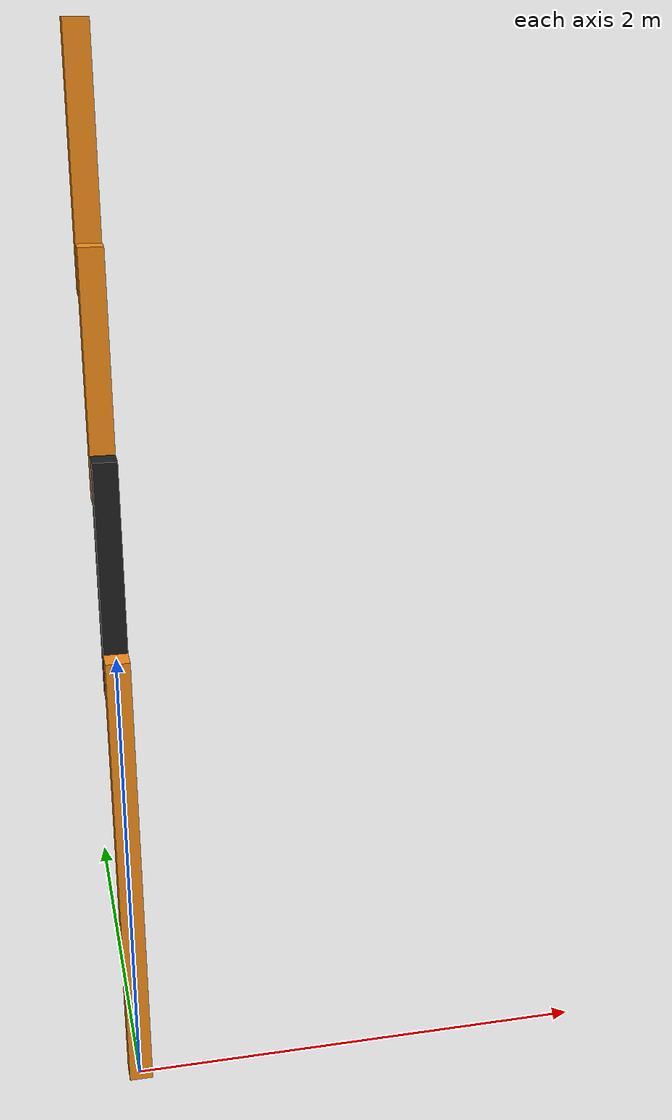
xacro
<?xml version="1.0"?>
<!-- Revolute-Revolute Manipulator -->
<robot name="pa1_robot" xmlns:xacro="http://www.ros.org/wiki/xacro">

  <!-- Constants for robot dimensions -->
  <xacro:property name="PI" value="3.1415926535897931"/>
  <xacro:property name="mass" value="1" /> <!-- arbitrary value for mass -->
  <xacro:property name="width" value="0.1" /> <!-- Square dimensions (widthxwidth) of beams -->
  <xacro:property name="height1" value="2" /> <!-- Link 1 -->
  <xacro:property name="height2" value="1" /> <!-- Link 2 -->
  <xacro:property name="height3" value="1" /> <!-- Link 3 -->
  <xacro:property name="height4" value="1" /> <!-- Link 4 -->

  <!-- Used for fixing robot to Gazebo 'base_link' -->
  <link name="world"/>

  <joint name="fixed" type="fixed">
    <parent link="world"/>
    <child link="link1"/>
  </joint>

  <!-- Base Link -->
  <link name="link1">
    <collision>
      <origin xyz="0 0 ${height1/2}" rpy="0 0 0"/>
      <geometry>
	<box size="${width} ${width} ${height1}"/>
      </geometry>
    </collision>

    <visual>
      <origin xyz="0 0 ${height1/2}" rpy="0 0 0"/>
      <geometry>
	<box size="${width} ${width} ${height1}"/>
      </geometry>
      <material name="orange"/>
    </visual>

    <inertial>
      <origin xyz="0 0 ${height1/2}" rpy="0 0 0"/>
      <mass value="${mass}"/>
      <inertia
	  ixx="${mass / 12.0 * (width*width + height1*height1)}" ixy="0.0" ixz="0.0"
	  iyy="${mass / 12.0 * (height1*height1 + width*width)}" iyz="0.0"
	  izz="${mass / 12.0 * (width*width + width*width)}"/>
    </inertial>
  </link>

  <joint name="joint1" type="continuous">
    <parent link="link1"/>
    <child link="link2"/>
    <origin xyz="0 ${width} ${height1 - 0.1}" rpy="0 0 0"/>
    <axis xyz="0 1 0"/>
    <dynamics damping="0.7"/>
  </joint>

  <!-- Middle Link -->
  <link name="link2">
    <collision>
      <origin xyz="0 0 ${height2/2 - 0.1}" rpy="0 0 0"/>
      <geometry>
	<box size="${width} ${width} ${height2}"/>
      </geometry>
    </collision>

    <visual>
      <origin xyz="0 0 ${height2/2 - 0.1}" rpy="0 0 0"/>
      <geometry>
	<box size="${width} ${width} ${height2}"/>
      </geometry>
      <material name="black"/>
    </visual>

    <inertial>
      <origin xyz="0 0 ${height2/2 - 0.1}" rpy="0 0 0"/>
      <mass value="${mass}"/>
      <inertia
	  ixx="${mass / 12.0 * (width*width + height2*height2)}" ixy="0.0" ixz="0.0"
	  iyy="${mass / 12.0 * (height2*height2 + width*width)}" iyz="0.0"
	  izz="${mass / 12.0 * (width*width + width*width)}"/>
    </inertial>
  </link>

  <joint name="joint2" type="continuous">
    <parent link="link2"/>
    <child link="link3"/>
    <origin xyz="0 ${width} ${height2 - 0.1*2}" rpy="0 0 0"/>
    <axis xyz="0 1 0"/>
    <dynamics damping="0.7"/>
  </joint>

  <!-- Top Link -->
  <link name="link3">
    <collision>
      <origin xyz="0 0 ${height3/2 - 0.1}" rpy="0 0 0"/>
      <geometry>
	<box size="${width} ${width} ${height3}"/>
      </geometry>
    </collision>

    <visual>
      <origin xyz="0 0 ${height3/2 - 0.1}" rpy="0 0 0"/>
      <geometry>
	<box size="${width} ${width} ${height3}"/>
      </geometry>
      <material name="orange"/>
    </visual>

    <inertial>
      <origin xyz="0 0 ${height3/2 - 0.1}" rpy="0 0 0"/>
      <mass value="${mass}"/>
      <inertia
	  ixx="${mass / 12.0 * (width*width + height3*height3)}" ixy="0.0" ixz="0.0"
	  iyy="${mass / 12.0 * (height3*height3 + width*width)}" iyz="0.0"
	  izz="${mass / 12.0 * (width*width + width*width)}"/>
    </inertial>
  </link>

  <joint name="joint3" type="continuous">
    <parent link="link3"/>
    <child link="link4"/>
    <origin xyz="0 ${width} ${height2 - 0.1*2}" rpy="0 0 0"/>
    <axis xyz="0 1 0"/>
    <dynamics damping="0.7"/>
  </joint>

  <!-- Top Link -->
  <link name="link4">
    <collision>
      <origin xyz="0 0 ${height4/2 - 0.1}" rpy="0 0 0"/>
      <geometry>
	<box size="${width} ${width} ${height4}"/>
      </geometry>
    </collision>

    <visual>
      <origin xyz="0 0 ${height4/2 - 0.1}" rpy="0 0 0"/>
      <geometry>
	<box size="${width} ${width} ${height3}"/>
      </geometry>
      <material name="orange"/>
    </visual>

    <inertial>
      <origin xyz="0 0 ${height4/2 - 0.1}" rpy="0 0 0"/>
      <mass value="${mass}"/>
      <inertia
	  ixx="${mass / 12.0 * (width*width + height3*height3)}" ixy="0.0" ixz="0.0"
	  iyy="${mass / 12.0 * (height3*height3 + width*width)}" iyz="0.0"
	  izz="${mass / 12.0 * (width*width + width*width)}"/>
    </inertial>
  </link>

  <transmission name="tran1">
    <type>transmission_interface/SimpleTransmission</type>
    <joint name="joint1">
      <hardwareInterface>hardware_interface/EffortJointInterface</hardwareInterface>
    </joint>
    <actuator name="motor1">
      <hardwareInterface>hardware_interface/EffortJointInterface</hardwareInterface>
      <mechanicalReduction>1</mechanicalReduction>
    </actuator>
  </transmission>

  <transmission name="tran2">
    <type>transmission_interface/SimpleTransmission</type>
    <joint name="joint2">
      <hardwareInterface>hardware_interface/EffortJointInterface</hardwareInterface>
    </joint>
    <actuator name="motor2">
      <hardwareInterface>hardware_interface/EffortJointInterface</hardwareInterface>
      <mechanicalReduction>1</mechanicalReduction>
    </actuator>
  </transmission>

  <transmission name="tran3">
    <type>transmission_interface/SimpleTransmission</type>
    <joint name="joint3">
      <hardwareInterface>hardware_interface/EffortJointInterface</hardwareInterface>
    </joint>
    <actuator name="motor3">
      <hardwareInterface>hardware_interface/EffortJointInterface</hardwareInterface>
      <mechanicalReduction>1</mechanicalReduction>
    </actuator>
  </transmission>

</robot>
